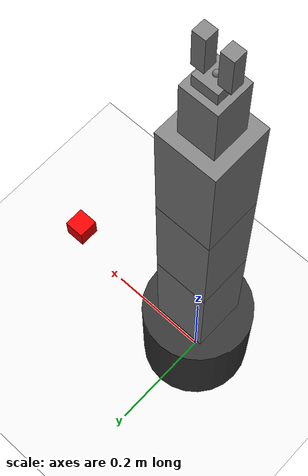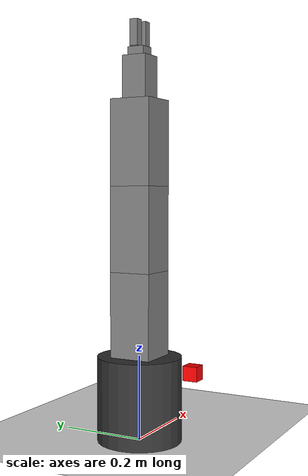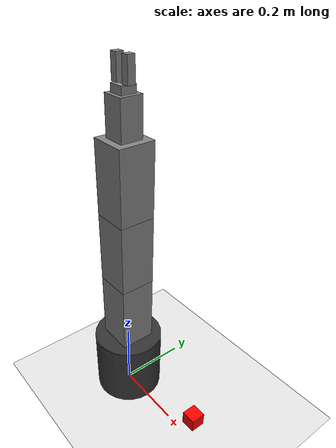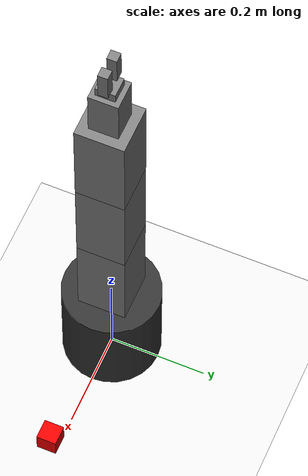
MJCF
<mujoco>
    <compiler angle="radian" coordinate="local"/>
    <option gravity="0 0 -9.81" timestep="0.002"/>
    <worldbody>
        <light pos="0 1 1" dir="0 -1 -1" diffuse="1 1 1"/>
        <geom type="plane" size="1 1 0.1" rgba="0.9 0.9 0.9 1"/>
        <body name="base" pos="0 0 0.1">
            <geom type="cylinder" size="0.1 0.1" rgba="0.2 0.2 0.2 1"/>
            <body name="link1" pos="0 0 0.1">
                <joint name="waist" type="hinge" axis="0 0 1" range="-3.14 3.14"/>
                <geom type="box" size="0.05 0.05 0.1" pos="0 0 0.1"/>
                <body name="link2" pos="0 0 0.2">
                    <joint name="shoulder" type="hinge" axis="0 1 0" range="-1.57 1.57"/>
                    <geom type="box" size="0.05 0.05 0.1" pos="0 0 0.1"/>
                    <body name="link3" pos="0 0 0.2">
                        <joint name="elbow" type="hinge" axis="0 1 0" range="-1.57 1.57"/>
                        <geom type="box" size="0.05 0.05 0.1" pos="0 0 0.1"/>
                        <body name="link4" pos="0 0 0.2">
                            <joint name="wrist_angle" type="hinge" axis="0 1 0" range="-1.57 1.57"/>
                            <geom type="box" size="0.03 0.03 0.05" pos="0 0 0.05"/>
                            <body name="link5" pos="0 0 0.1">
                                <joint name="wrist_rotate" type="hinge" axis="0 0 1" range="-3.14 3.14"/>
                                <geom type="box" size="0.02 0.02 0.02" pos="0 0 0"/>
                                <site name="eef_site" pos="0 0 0.02"/>
                                <!-- Placeholder gripper -->
                                <body name="left_finger" pos="-0.02 0 0.02">
                                    <joint name="left_finger" type="slide" axis="1 0 0" range="0 0.03"/>
                                    <geom type="box" size="0.01 0.01 0.03" pos="0 0 0.03"/>
                                </body>
                                <body name="right_finger" pos="0.02 0 0.02">
                                    <joint name="right_finger" type="slide" axis="-1 0 0" range="0 0.03"/>
                                    <geom type="box" size="0.01 0.01 0.03" pos="0 0 0.03"/>
                                </body>
                            </body>
                        </body>
                    </body>
                </body>
            </body>
        </body>

        <!-- Target object -->
        <body name="target" pos="0.3 0 0.1">
            <freejoint/>
            <geom type="box" size="0.02 0.02 0.02" rgba="1 0 0 1" name="target_geom"/>
        </body>
    </worldbody>
    <actuator>
        <motor joint="waist" ctrlrange="-1 1" gear="50"/>
        <motor joint="shoulder" ctrlrange="-1 1" gear="50"/>
        <motor joint="elbow" ctrlrange="-1 1" gear="50"/>
        <motor joint="wrist_angle" ctrlrange="-1 1" gear="20"/>
        <motor joint="wrist_rotate" ctrlrange="-1 1" gear="20"/>
        <position joint="left_finger" ctrlrange="0 0.03" kp="100"/>
        <position joint="right_finger" ctrlrange="0 0.03" kp="100"/>
    </actuator>
</mujoco>
